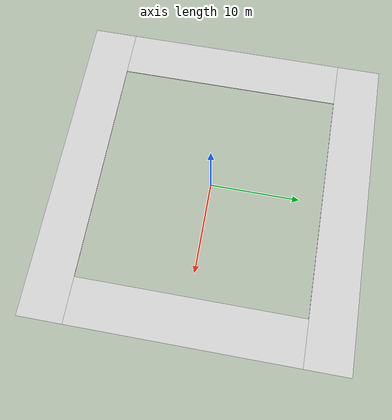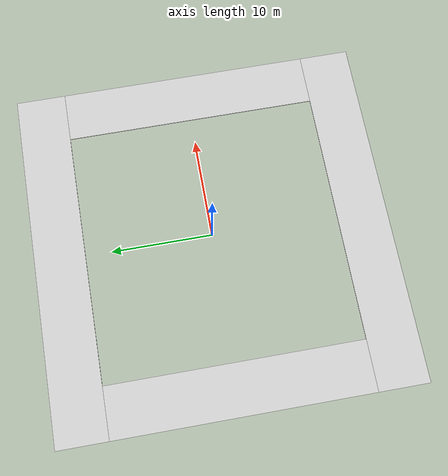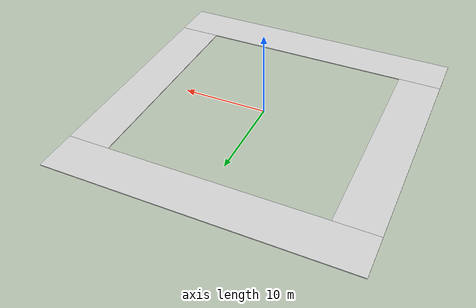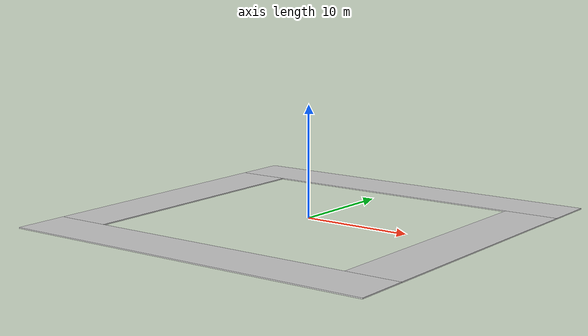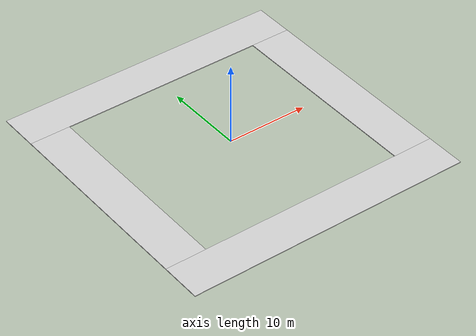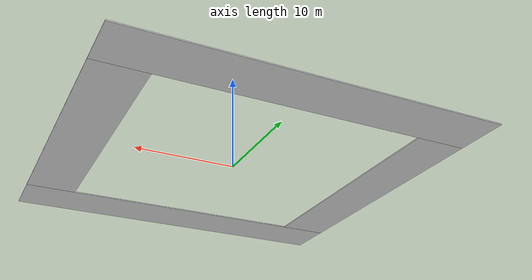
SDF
<?xml version="1.0"?>
<sdf version="1.12">
  <model name="deck">
    <static>true</static>
    <link name="link">

      <!-- +X deck strip: x from 12.6 to 17.6 -->
      <collision name="deck_px_col">
        <pose>15.1 0 0 0 0 0</pose>
        <geometry><box><size>5.0 25.2 0.1</size></box></geometry>
      </collision>
      <visual name="deck_px_vis">
        <pose>15.1 0 0 0 0 0</pose>
        <geometry><box><size>5.0 25.2 0.1</size></box></geometry>
        <material>
          <ambient>0.7 0.7 0.7 1</ambient>
          <diffuse>0.8 0.8 0.8 1</diffuse>
          <pbr>
            <metal>
              <albedo_map>model://pool/materials/textures/concrete.png</albedo_map>
              <normal_map>model://pool/materials/textures/concrete_normal.png</normal_map>
              <roughness_map>model://pool/materials/textures/concrete_roughness.png</roughness_map>
              <metalness>0.0</metalness>
            </metal>
          </pbr>
        </material>
      </visual>

      <!-- -X deck strip: x from -17.6 to -12.6 -->
      <collision name="deck_nx_col">
        <pose>-15.1 0 0 0 0 0</pose>
        <geometry><box><size>5.0 25.2 0.1</size></box></geometry>
      </collision>
      <visual name="deck_nx_vis">
        <pose>-15.1 0 0 0 0 0</pose>
        <geometry><box><size>5.0 25.2 0.1</size></box></geometry>
        <material>
          <ambient>0.7 0.7 0.7 1</ambient>
          <diffuse>0.8 0.8 0.8 1</diffuse>
          <pbr>
            <metal>
              <albedo_map>model://pool/materials/textures/concrete.png</albedo_map>
              <normal_map>model://pool/materials/textures/concrete_normal.png</normal_map>
              <roughness_map>model://pool/materials/textures/concrete_roughness.png</roughness_map>
              <metalness>0.0</metalness>
            </metal>
          </pbr>
        </material>
      </visual>

      <!-- +Y deck strip: y from 12.6 to 17.6, full width including corners -->
      <collision name="deck_py_col">
        <pose>0 15.1 0 0 0 0</pose>
        <geometry><box><size>35.2 5.0 0.1</size></box></geometry>
      </collision>
      <visual name="deck_py_vis">
        <pose>0 15.1 0 0 0 0</pose>
        <geometry><box><size>35.2 5.0 0.1</size></box></geometry>
        <material>
          <ambient>0.7 0.7 0.7 1</ambient>
          <diffuse>0.8 0.8 0.8 1</diffuse>
          <pbr>
            <metal>
              <albedo_map>model://pool/materials/textures/concrete.png</albedo_map>
              <normal_map>model://pool/materials/textures/concrete_normal.png</normal_map>
              <roughness_map>model://pool/materials/textures/concrete_roughness.png</roughness_map>
              <metalness>0.0</metalness>
            </metal>
          </pbr>
        </material>
      </visual>

      <!-- -Y deck strip: y from -17.6 to -12.6, full width including corners -->
      <collision name="deck_ny_col">
        <pose>0 -15.1 0 0 0 0</pose>
        <geometry><box><size>35.2 5.0 0.1</size></box></geometry>
      </collision>
      <visual name="deck_ny_vis">
        <pose>0 -15.1 0 0 0 0</pose>
        <geometry><box><size>35.2 5.0 0.1</size></box></geometry>
        <material>
          <ambient>0.7 0.7 0.7 1</ambient>
          <diffuse>0.8 0.8 0.8 1</diffuse>
          <pbr>
            <metal>
              <albedo_map>model://pool/materials/textures/concrete.png</albedo_map>
              <normal_map>model://pool/materials/textures/concrete_normal.png</normal_map>
              <roughness_map>model://pool/materials/textures/concrete_roughness.png</roughness_map>
              <metalness>0.0</metalness>
            </metal>
          </pbr>
        </material>
      </visual>

    </link>
  </model>
</sdf>
